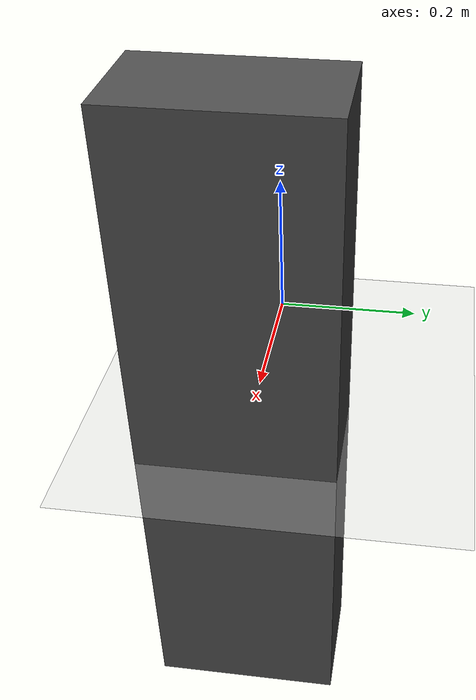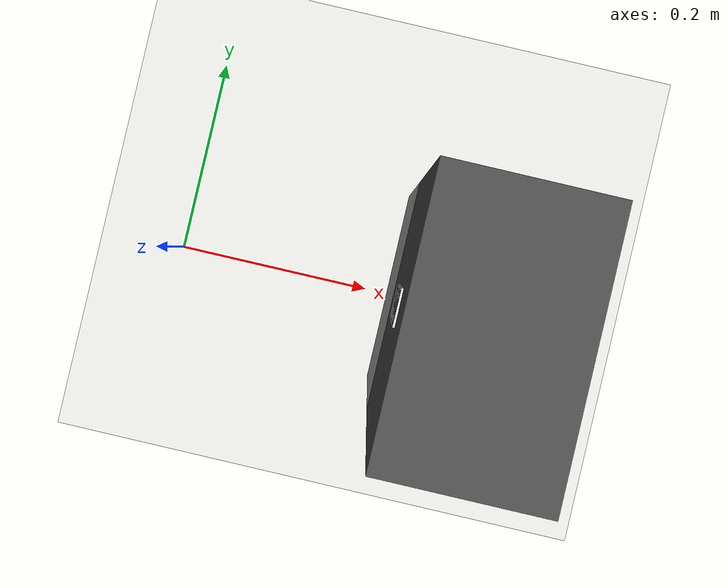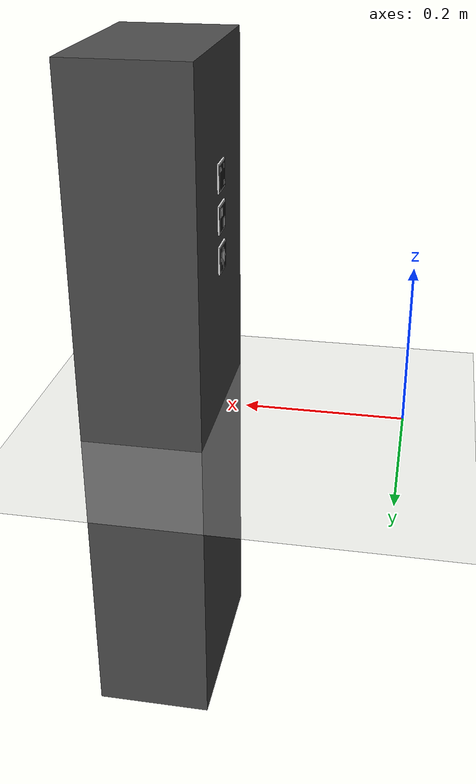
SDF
<?xml version="1.0" ?>
<sdf version="1.7">
  <world name="roomie_aruco_world">
    <!-- Physics settings -->
    <physics name="1ms" type="ignored">
      <max_step_size>0.001</max_step_size>
      <real_time_factor>1.0</real_time_factor>
    </physics>

    <!-- Plugins -->
    <plugin
      filename="gz-sim-physics-system"
      name="gz::sim::systems::Physics">
    </plugin>
    <plugin
      filename="gz-sim-user-commands-system"
      name="gz::sim::systems::UserCommands">
    </plugin>
    <plugin
      filename="gz-sim-scene-broadcaster-system"
      name="gz::sim::systems::SceneBroadcaster">
    </plugin>
    <plugin
      filename="gz-sim-sensors-system"
      name="gz::sim::systems::Sensors">
      <render_engine>ogre2</render_engine>
    </plugin>
    <plugin
      filename="gz-sim-contact-system"
      name="gz::sim::systems::Contact">
    </plugin>

    <!-- Lighting -->
    <light type="directional" name="sun">
      <cast_shadows>true</cast_shadows>
      <pose>0 0 10 0 0 0</pose>
      <diffuse>0.8 0.8 0.8 1</diffuse>
      <specular>0.2 0.2 0.2 1</specular>
      <attenuation>
        <range>1000</range>
        <constant>0.9</constant>
        <linear>0.01</linear>
        <quadratic>0.001</quadratic>
      </attenuation>
      <direction>-0.5 0.1 -0.9</direction>
    </light>

    <!-- Ground plane -->
    <model name="ground_plane">
      <static>true</static>
      <link name="link">
        <collision name="collision">
          <geometry>
            <plane>
              <normal>0 0 1</normal>
              <size>100 100</size>
            </plane>
          </geometry>
        </collision>
        <visual name="visual">
          <geometry>
            <plane>
              <normal>0 0 1</normal>
              <size>100 100</size>
            </plane>
          </geometry>
          <material>
            <ambient>0.8 0.8 0.8 1</ambient>
            <diffuse>0.8 0.8 0.8 1</diffuse>
            <specular>0.8 0.8 0.8 1</specular>
          </material>
        </visual>
      </link>
    </model>

    <!-- ArUco Marker Panel 1 (ID: 101) - 카메라가 볼 수 있도록 세워서 배치 -->
    <include>
      <uri>model://aruco_marker_101</uri>
      <pose>0.23 0 0.30 0 -1.5708 0</pose>  <!-- 90도 회전(pitch)으로 세워서 배치 -->
      <name>aruco_panel_101</name>
    </include>

    <!-- ArUco Marker Panel 2 (ID: 102) -->
    <include>
      <uri>model://aruco_marker_102</uri>
      <pose>0.23 0.0 0.25 0 -1.5708 0</pose>  <!-- 90도 회전으로 세워서 배치 -->
      <name>aruco_panel_102</name>
    </include>

    <!-- ArUco Marker Panel 3 (ID: 103) -->
    <include>
      <uri>model://aruco_marker_103</uri>
      <pose>0.23 0.0 0.20 0 -1.5708 0</pose>  <!-- 90도 회전으로 세워서 배치 -->
      <name>aruco_panel_103</name>
    </include>

    <!-- Control Panel Base -->
    <model name="control_panel">
      <static>true</static>
      <pose>0.3061 0 0.02 0 0 0</pose>
      <link name="panel_base">
        <collision name="collision">
          <geometry>
            <box>
              <size>0.15 0.25 0.86</size>
            </box>
          </geometry>
        </collision>
        <visual name="visual">
          <geometry>
            <box>
              <size>0.15 0.25 0.86</size>
            </box>
          </geometry>
          <material>
            <ambient>0.2 0.2 0.2 1</ambient>
            <diffuse>0.3 0.3 0.3 1</diffuse>
          </material>
        </visual>
      </link>
    </model>

  </world>
</sdf>

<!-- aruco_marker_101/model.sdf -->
<sdf version="1.7">
  <model name="aruco_marker_101">
    <static>true</static>
    <link name="marker_link">
      <!-- Collision -->
      <collision name="marker_collision">
        <geometry>
          <box>
            <size>0.035 0.035 0.002</size>  <!-- 3.5cm x 3.5cm x 2mm -->
          </box>
        </geometry>
      </collision>

      <!-- Base visual (white background) -->
      <visual name="base">
        <geometry>
          <box>
            <size>0.035 0.035 0.002</size>  <!-- 3.5cm x 3.5cm -->
          </box>
        </geometry>
        <material>
          <script>
            <uri>file://media/materials/scripts/gazebo.material</uri>
            <name>Gazebo/White</name>
          </script>
        </material>
      </visual>

      <visual name="aruco_pattern">
        <pose>0 0 0.001 0 0 0</pose>
        <geometry>
          <box>
            <size>0.03 0.03 0.001</size>  <!-- ArUco 패턴 -->
          </box>
        </geometry>
        <material>
          <script>
            <uri>file://media/materials/scripts/gazebo.material</uri>
            <name>Gazebo/Black</name>
          </script>
        </material>
      </visual>

      <!-- ArUco pattern corners (simplified) -->
      <visual name="corner_1">
        <pose>-0.01 -0.01 0.0015 0 0 0</pose>
        <geometry>
          <box>
            <size>0.005 0.005 0.001</size>
          </box>
        </geometry>
        <material>
          <script>
            <uri>file://media/materials/scripts/gazebo.material</uri>
            <name>Gazebo/White</name>
          </script>
        </material>
      </visual>

      <visual name="corner_2">
        <pose>0.01 -0.01 0.0015 0 0 0</pose>
        <geometry>
          <box>
            <size>0.005 0.005 0.001</size>
          </box>
        </geometry>
        <material>
          <script>
            <uri>file://media/materials/scripts/gazebo.material</uri>
            <name>Gazebo/White</name>
          </script>
        </material>
      </visual>

      <visual name="corner_3">
        <pose>0.01 0.01 0.0015 0 0 0</pose>
        <geometry>
          <box>
            <size>0.005 0.005 0.001</size>
          </box>
        </geometry>
        <material>
          <script>
            <uri>file://media/materials/scripts/gazebo.material</uri>
            <name>Gazebo/White</name>
          </script>
        </material>
      </visual>

      <inertial>
        <mass>0.01</mass>
        <inertia>
          <ixx>0.000001</ixx>
          <iyy>0.000001</iyy>
          <izz>0.000001</izz>
        </inertia>
      </inertial>
    </link>
  </model>
</sdf>

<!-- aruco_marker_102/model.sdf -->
<sdf version="1.7">
  <model name="aruco_marker_102">
    <static>true</static>
    <link name="marker_link">
      <!-- Collision -->
      <collision name="marker_collision">
        <geometry>
          <box>
            <size>0.035 0.035 0.002</size>  <!-- 3.5cm x 3.5cm x 2mm -->
          </box>
        </geometry>
      </collision>

      <!-- Base visual (white background) -->
      <visual name="base">
        <geometry>
          <box>
            <size>0.035 0.035 0.002</size>  <!-- 3.5cm x 3.5cm -->
          </box>
        </geometry>
        <material>
          <script>
            <uri>file://media/materials/scripts/gazebo.material</uri>
            <name>Gazebo/White</name>
          </script>
        </material>
      </visual>

      <visual name="aruco_pattern">
        <pose>0 0 0.001 0 0 0</pose>
        <geometry>
          <box>
            <size>0.03 0.03 0.001</size>  <!-- ArUco 패턴 -->
          </box>
        </geometry>
        <material>
          <script>
            <uri>file://media/materials/scripts/gazebo.material</uri>
            <name>Gazebo/Black</name>
          </script>
        </material>
      </visual>

      <!-- Different pattern for ID 102 -->
      <visual name="pattern_102">
        <pose>-0.008 -0.008 0.0015 0 0 0</pose>
        <geometry>
          <box>
            <size>0.01 0.01 0.001</size>
          </box>
        </geometry>
        <material>
          <script>
            <uri>file://media/materials/scripts/gazebo.material</uri>
            <name>Gazebo/White</name>
          </script>
        </material>
      </visual>

      <visual name="pattern_102_2">
        <pose>0.008 0.008 0.0015 0 0 0</pose>
        <geometry>
          <box>
            <size>0.01 0.01 0.001</size>
          </box>
        </geometry>
        <material>
          <script>
            <uri>file://media/materials/scripts/gazebo.material</uri>
            <name>Gazebo/White</name>
          </script>
        </material>
      </visual>

      <inertial>
        <mass>0.01</mass>
        <inertia>
          <ixx>0.000001</ixx>
          <iyy>0.000001</iyy>
          <izz>0.000001</izz>
        </inertia>
      </inertial>
    </link>
  </model>
</sdf>

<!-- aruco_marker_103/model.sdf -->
<sdf version="1.7">
  <model name="aruco_marker_103">
    <static>true</static>
    <link name="marker_link">
      <!-- Collision -->
      <collision name="marker_collision">
        <geometry>
          <box>
            <size>0.035 0.035 0.002</size>  <!-- 3.5cm x 3.5cm x 2mm -->
          </box>
        </geometry>
      </collision>

      <!-- Base visual (white background) -->
      <visual name="marker_visual">
        <geometry>
          <box>
            <size>0.035 0.035 0.002</size>  <!-- 3.5cm x 3.5cm -->
          </box>
        </geometry>
        <material>
          <script>
            <uri>file://media/materials/scripts/gazebo.material</uri>
            <name>Gazebo/White</name>
          </script>
        </material>
      </visual>

      <visual name="aruco_pattern">
        <pose>0 0 0.001 0 0 0</pose>
        <geometry>
          <box>
            <size>0.03 0.03 0.001</size>  <!-- ArUco 패턴 -->
          </box>
        </geometry>
        <material>
          <script>
            <uri>file://media/materials/scripts/gazebo.material</uri>
            <name>Gazebo/Black</name>
          </script>
        </material>
      </visual>

      <!-- Different pattern for ID 103 -->
      <visual name="pattern_103_center">
        <pose>0 0 0.0015 0 0 0</pose>
        <geometry>
          <box>
            <size>0.015 0.015 0.001</size>
          </box>
        </geometry>
        <material>
          <script>
            <uri>file://media/materials/scripts/gazebo.material</uri>
            <name>Gazebo/White</name>
          </script>
        </material>
      </visual>

      <visual name="pattern_103_cross_h">
        <pose>0 0 0.0015 0 0 0</pose>
        <geometry>
          <box>
            <size>0.025 0.003 0.001</size>
          </box>
        </geometry>
        <material>
          <script>
            <uri>file://media/materials/scripts/gazebo.material</uri>
            <name>Gazebo/White</name>
          </script>
        </material>
      </visual>

      <visual name="pattern_103_cross_v">
        <pose>0 0 0.0015 0 0 0</pose>
        <geometry>
          <box>
            <size>0.003 0.025 0.001</size>
          </box>
        </geometry>
        <material>
          <script>
            <uri>file://media/materials/scripts/gazebo.material</uri>
            <name>Gazebo/White</name>
          </script>
        </material>
      </visual>

      <inertial>
        <mass>0.01</mass>
        <inertia>
          <ixx>0.000001</ixx>
          <iyy>0.000001</iyy>
          <izz>0.000001</izz>
        </inertia>
      </inertial>
    </link>
  </model>
</sdf>
